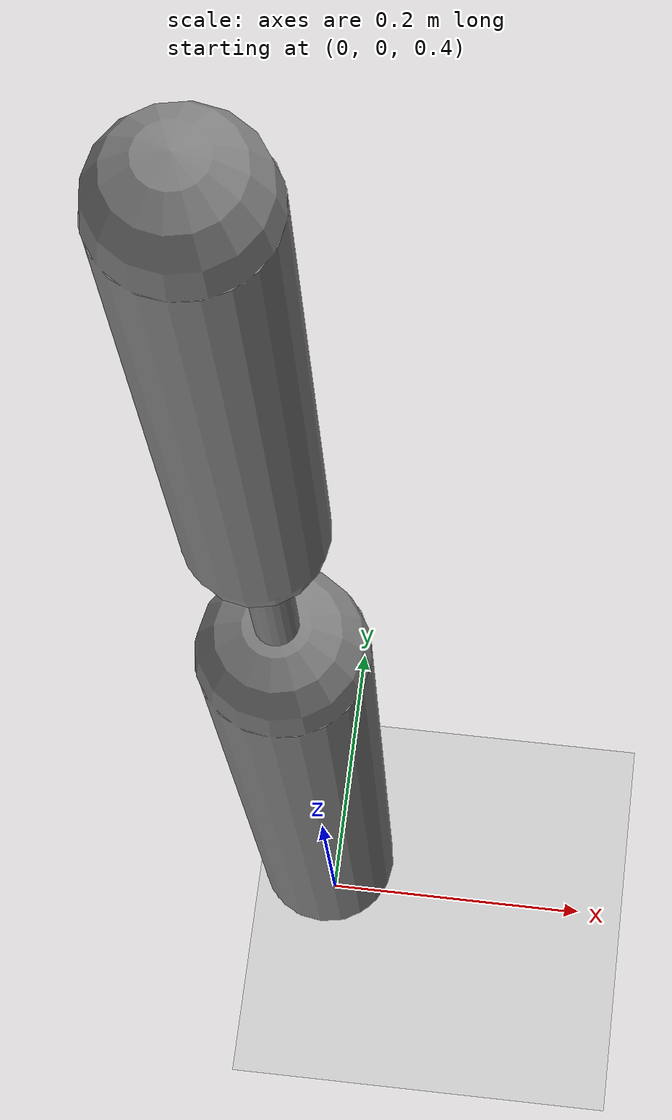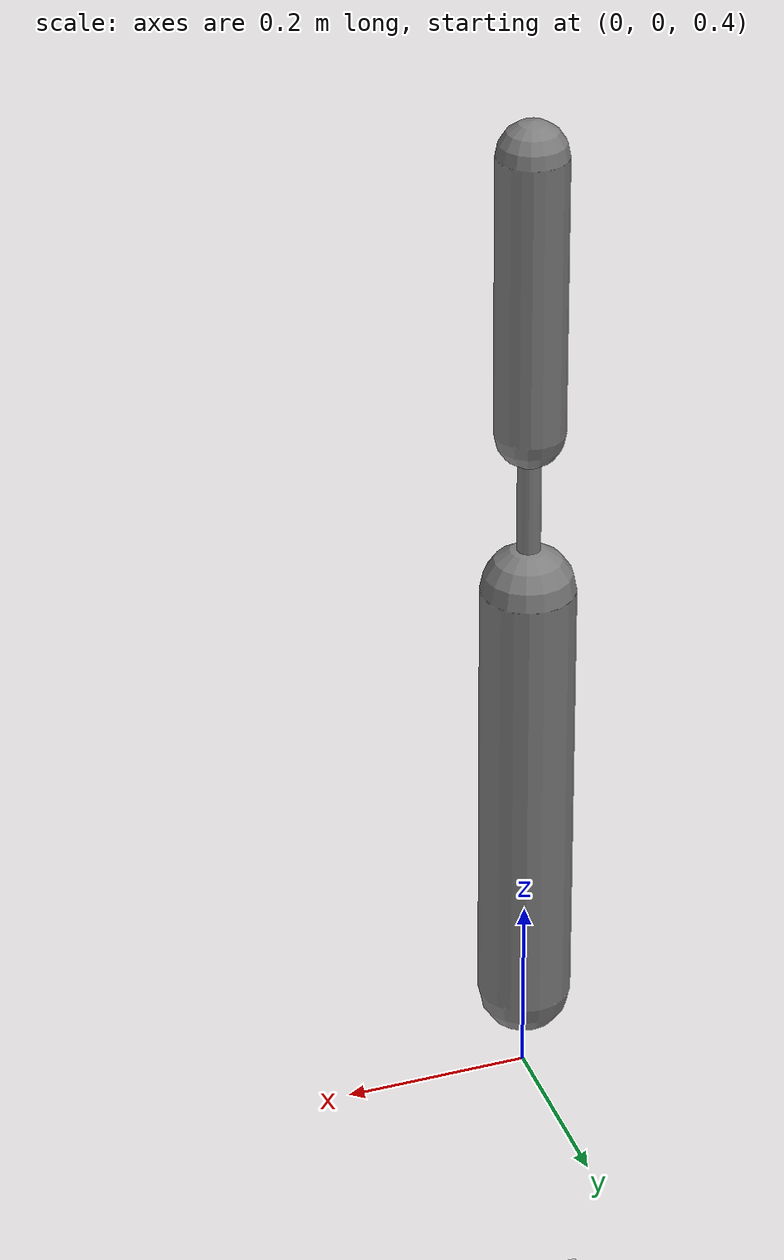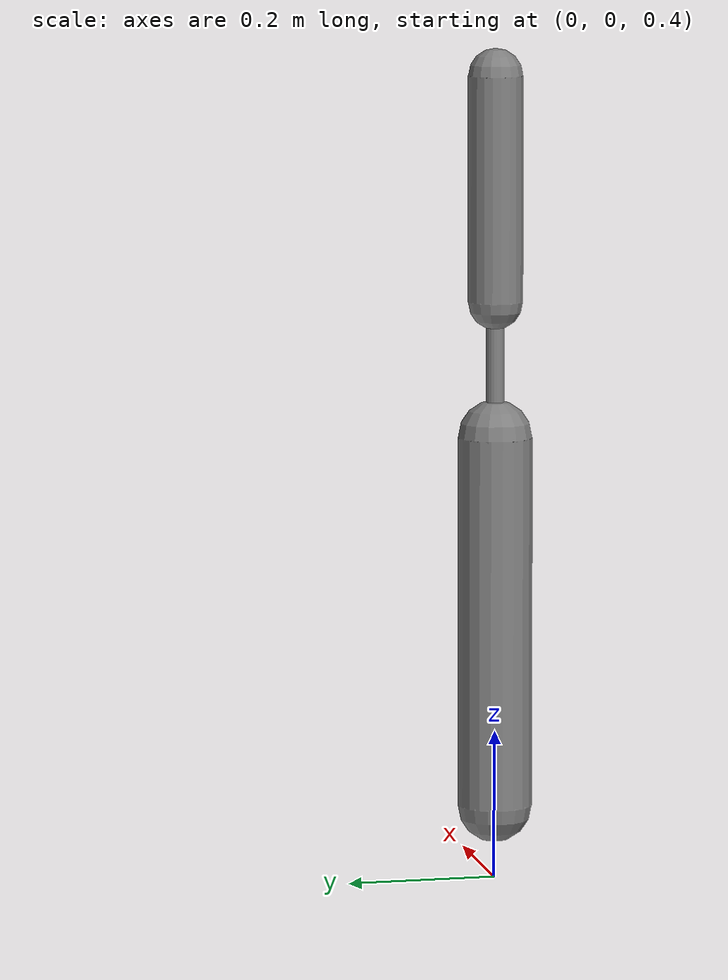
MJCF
<?xml version='1.0' encoding='UTF-8'?>
<mujoco model="RobotModel">
  <option gravity="0 0 -9.81" timestep="0.002" solver="CG" iterations="500" integrator="Euler"/>
  <worldbody>
    <geom name="Floor" type="plane" size="10 10 0.1" pos="0 0 0" rgba="0.8 0.8 0.8 1"/>
    <body name="Limb0" pos="0 0 0.5">
      <geom type="capsule" fromto="0 0 0 0 0 0.5" size="0.05" density="1000" contype="0" conaffinity="0"/>
      <body name="Limb0_5403addc" pos="0 0 0.5">
        <geom type="capsule" fromto="0 0 0 0 0 0.1816502480659659" size="0.012383434625120265" density="800" contype="0" conaffinity="0"/>
        <body name="Limb1_5403addc" pos="0 0 0.1816502480659659">
          <geom type="capsule" fromto="0 0 0 0 0 0.3012621165099825" size="0.03678451556981661" density="800" contype="0" conaffinity="0"/>
          <joint name="Joint_Limb0_5403addc_Limb1_5403addc_0" type="hinge" axis="0 1 0" range="-60 60"/>
        </body>
        <joint name="Joint_Limb0_Limb0_5403addc_0" type="hinge" axis="1 0 0" range="-60 60"/>
      </body>
    </body>
  </worldbody>
  <actuator>
    <position name="position_Actuator_Joint_Limb0_Limb0_5403addc_0" joint="Joint_Limb0_Limb0_5403addc_0" gear="1.0"/>
    <position name="position_Actuator_Joint_Limb0_5403addc_Limb1_5403addc_0" joint="Joint_Limb0_5403addc_Limb1_5403addc_0" gear="1.0"/>
  </actuator>
</mujoco>
